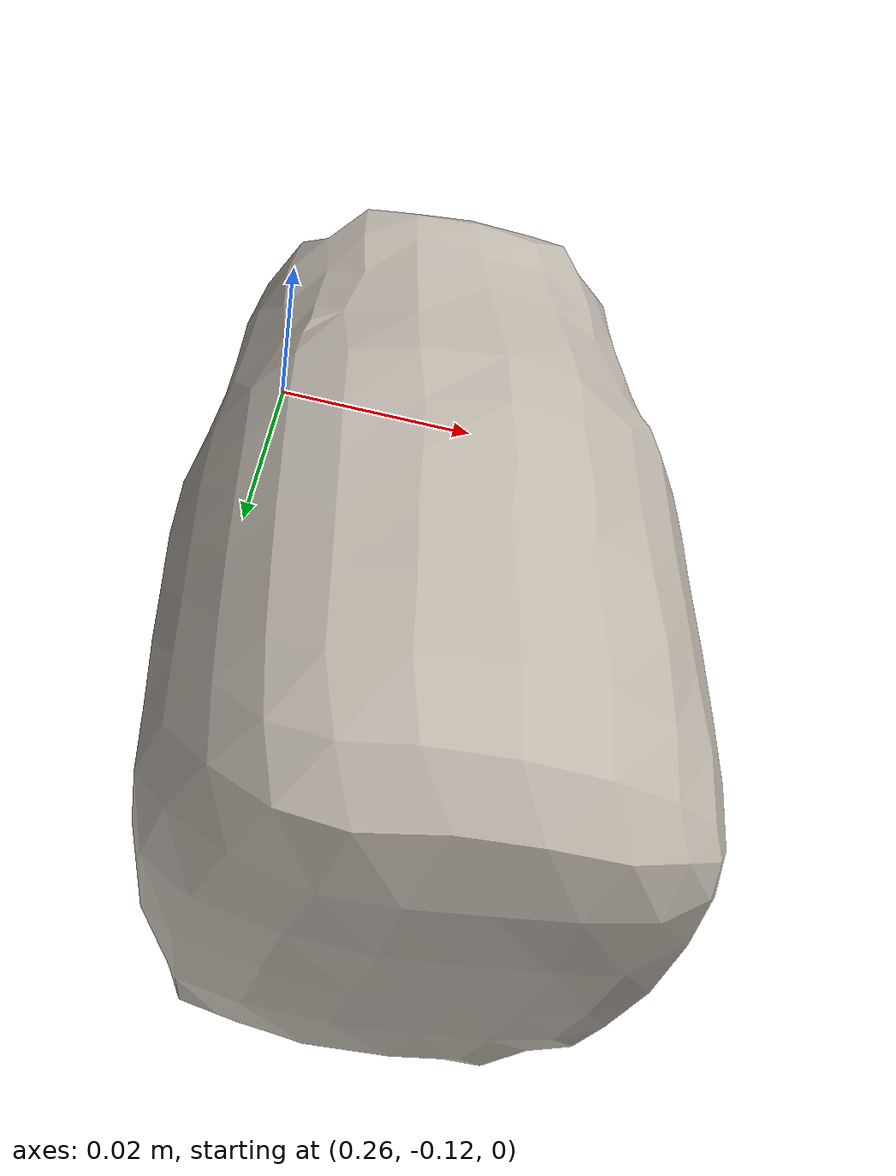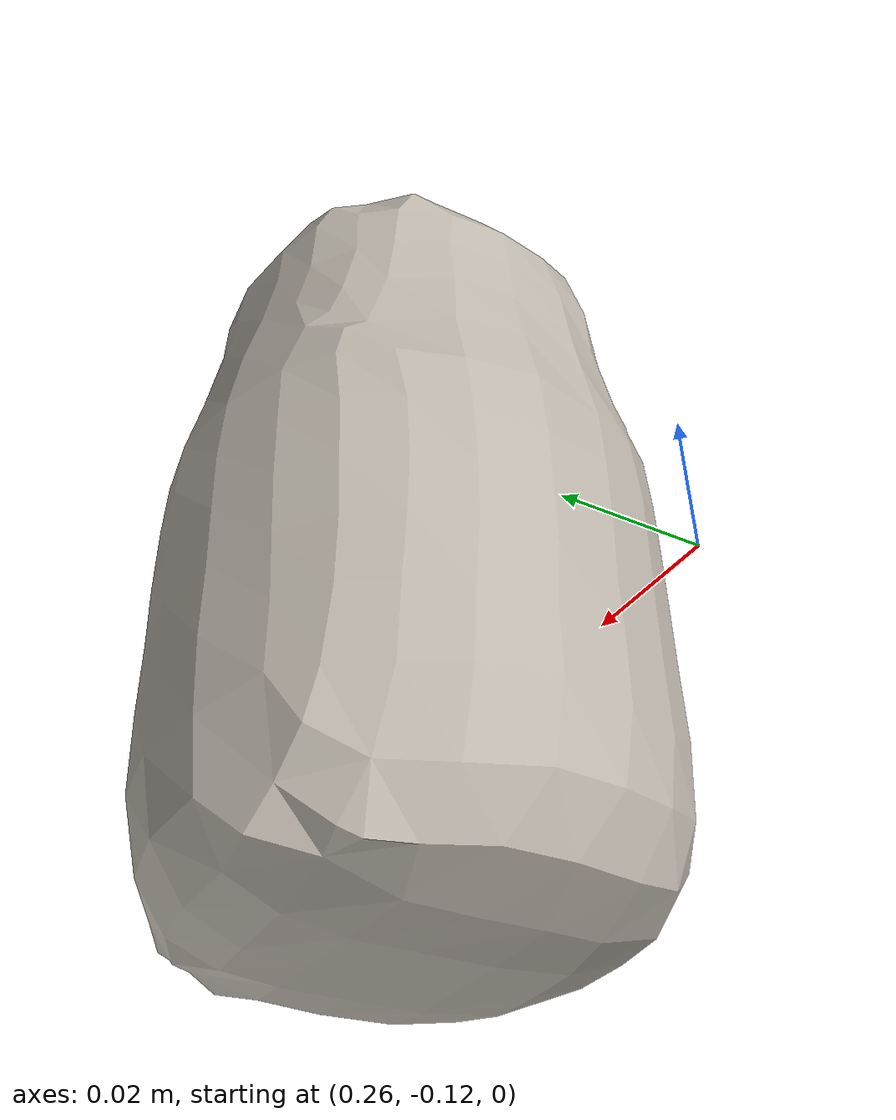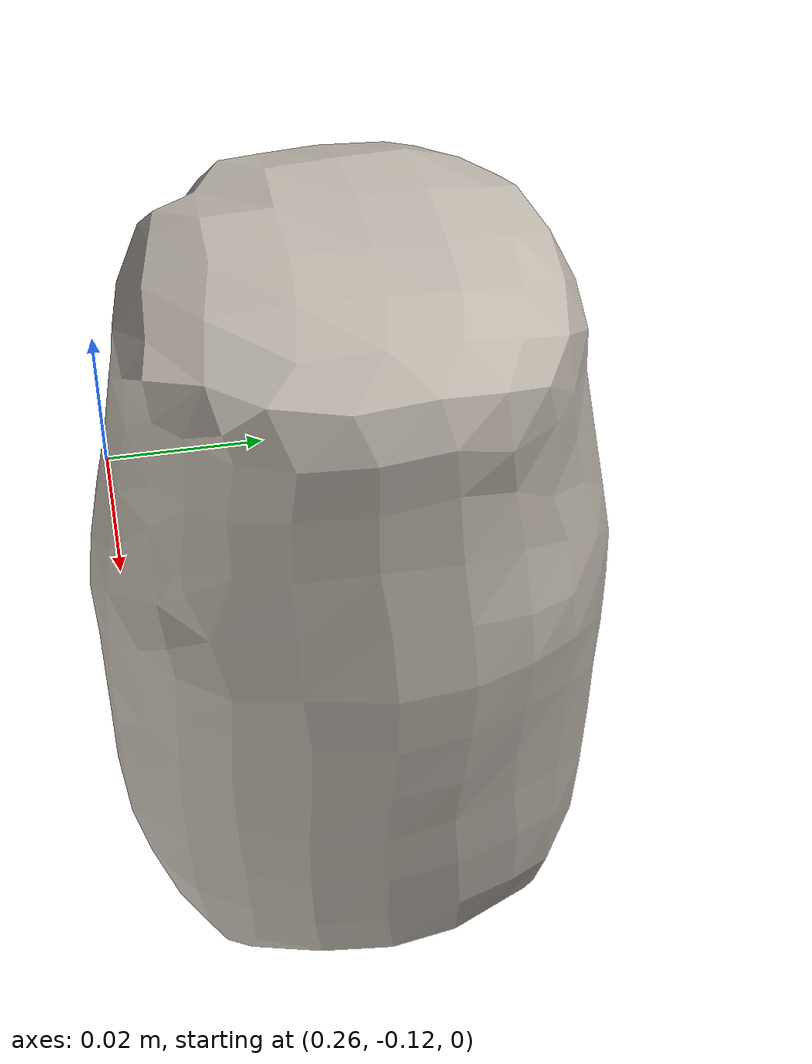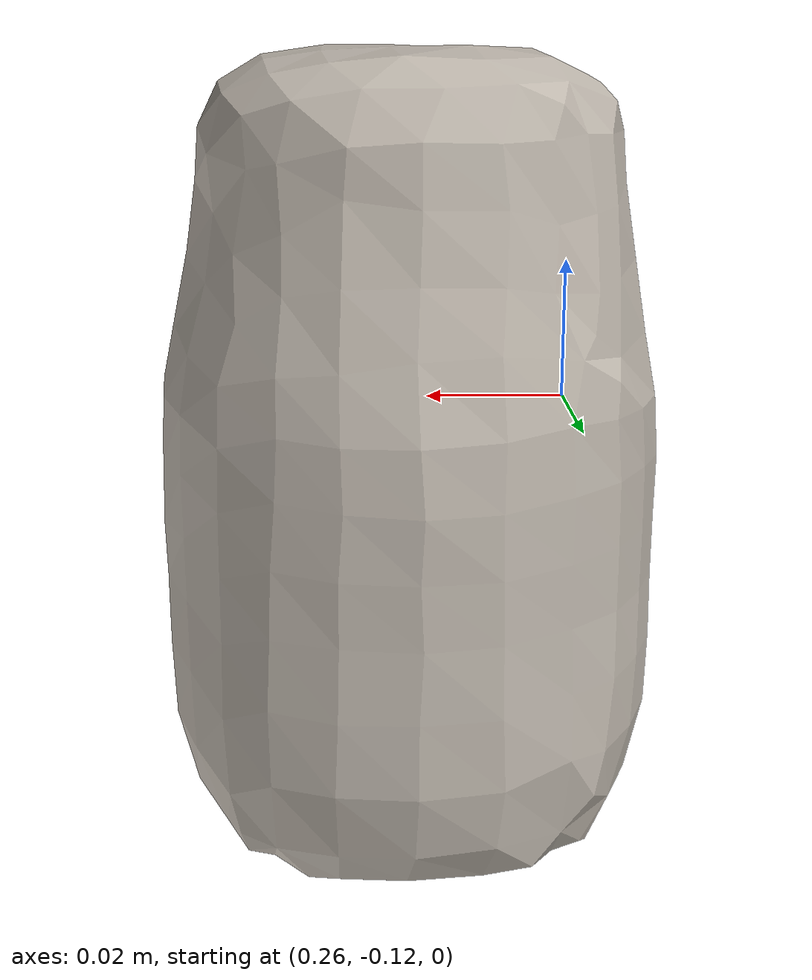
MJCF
<mujoco model="pillbottle_Germanium_GE132_M">
  <asset>
    <mesh file="meshes/pillbottle_Germanium_GE132_M.stl" name="pillbottle_mesh" scale="1.0827139278516498 1.0827139278516498 1.0827139278516498"/>
    <texture type="cube" file="/home/jbw/Projects/gc-reorientation/bin_env/assets/textures/ceramic.png" rgb1="1 1 1" name="tex-pillbottle"/>
    <material name="pillbottle" reflectance="0.5" texrepeat="3 3" texture="tex-pillbottle"/>
  </asset>
  <worldbody>
    <body>
      <body name="object">
        <geom pos="0.2837091835597711 -0.09258129427580825 -0.002178474319574532" quat="1 0 0 0" mesh="pillbottle_mesh" type="mesh" solref="0.02 1" density="0" friction="1.0 1.0 1.0" material="pillbottle" group="0" condim="4"/>
      </body>
      <site rgba="0 0 0 0" size="0.005" pos="0 0 -0.05" name="bottom_site"/>
      <site rgba="0 0 0 0" size="0.005" pos="0 0 0.03" name="top_site"/>
      <site rgba="0 0 0 0" size="0.005" pos="0.02 0.015 0" name="horizontal_radius_site"/>
    </body>
  </worldbody>
</mujoco>
